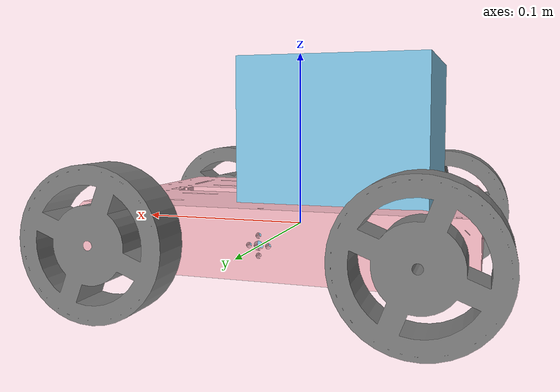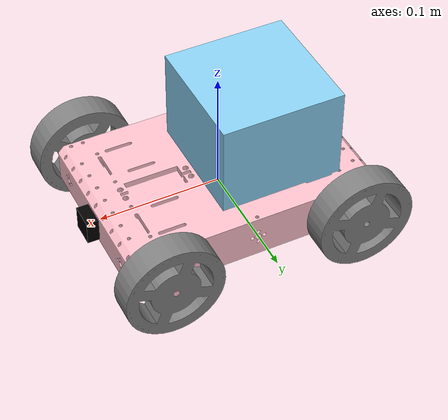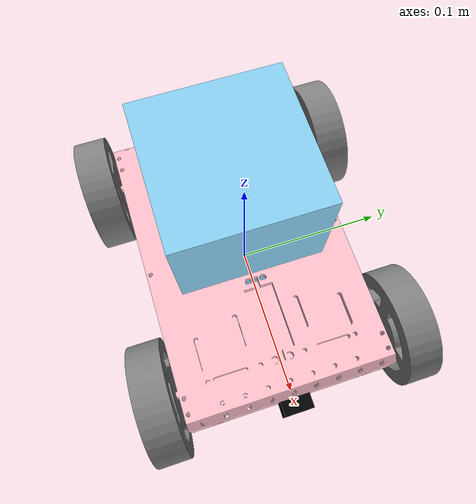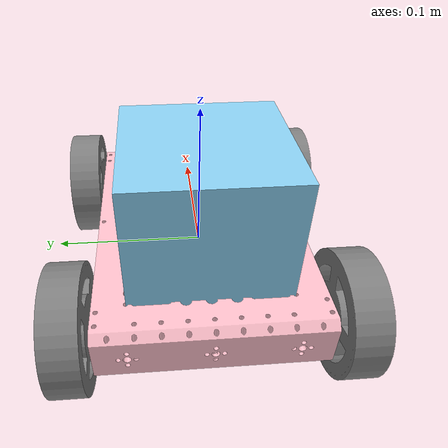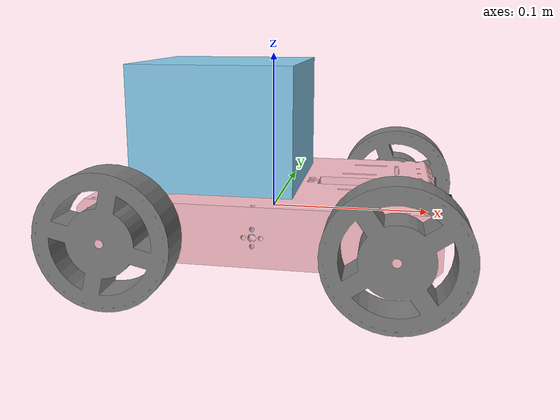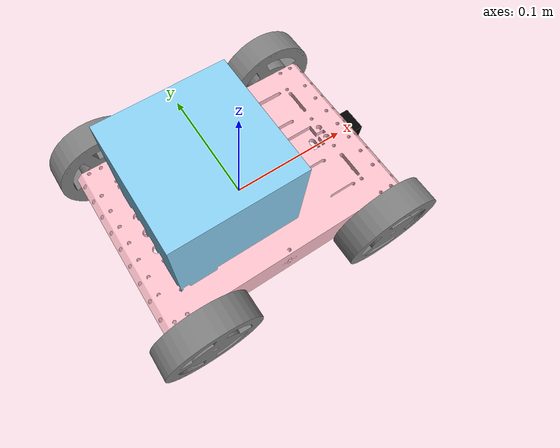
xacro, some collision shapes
<?xml version="1.0" encoding="utf-8"?>

<robot xmlns:xacro="http://www.ros.org/wiki/xacro" name="my_robot_descirption_6">

  <xacro:include filename="$(find my_robot_descirption_6)/urdf/my_robot.gazebo"/>
  <xacro:include filename="$(find my_robot_navigation)/urdf/my_camera.xacro"/>

  <!--dummy robot base-->
  <link name="robot_footprint">
  </link>

  <joint name="robot_footprint_joint" type="fixed">
    <parent link="robot_footprint"/>
    <child link="base_link"/>
    <origin xyz="0.0 0.0 0.0" rpy="0.0 0.0 0.0"/>
  </joint>

  <link
    name="base_link">
    <inertial>
      <origin
        xyz="0.000252209867107389 -0.00038555488684432 -0.000299158651990671"
        rpy="0 0 0" />
      <mass
        value="0.957708699167893" />
      <inertia
        ixx="0.00141349612035954"
        ixy="3.8205623738715E-14"
        ixz="9.82017698792152E-12"
        iyy="0.00215520955933847"
        iyz="1.33153730568242E-14"
        izz="0.00349743945422456" />
    </inertial>
    <visual>
      <origin
        xyz="0 0 0"
        rpy="0 0 0" />
      <geometry>
        <mesh
          filename="package://my_robot_descirption_6/meshes/base_link.STL" />
      </geometry>
      <material
        name="">
        <color
          rgba="1.0 0.753 0.796 1" />
      </material>
    </visual>
    <collision>
      <origin
        xyz="0 0 0"
        rpy="0 0 0" />
      <geometry>
        <mesh
          filename="package://my_robot_descirption_6/meshes/base_link.STL" />
      </geometry>
    </collision>
  </link>
  <link
    name="right_front_wheel_link">
    <inertial>
      <origin
        xyz="1.69194095939185E-06 0.011 -2.39602456181612E-06"
        rpy="0 0 0" />
      <mass
        value="0.205279642528535" />
      <inertia
        ixx="8.76570959286214E-05"
        ixy="-2.20206728368428E-21"
        ixz="7.9106463718466E-08"
        iyy="0.000159146108361823"
        iyz="1.5770111496766E-20"
        izz="8.80482369305033E-05" />
    </inertial>
    <visual>
      <origin
        xyz="0 0 0"
        rpy="0 0 0" />
      <geometry>
        <mesh
          filename="package://my_robot_descirption_6/meshes/right_front_wheel_link.STL" />
      </geometry>
      <material
        name="">
        <color
          rgba="0.5 0.5 0.5 1" />
      </material>
    </visual>
    <collision>
      <origin
        xyz="0 0 0"
        rpy="0 0 0" />
      <geometry>
        <mesh
          filename="package://my_robot_descirption_6/meshes/right_front_wheel_link.STL" />
      </geometry>
    </collision>
  </link>
  <joint
    name="right_front_wheel_joint"
    type="continuous">
    <origin
      xyz="0.080119 -0.095001 0.00037775"
      rpy="0 0 0" />
    <parent
      link="base_link" />
    <child
      link="right_front_wheel_link" />
    <axis
      xyz="0 1 0" />
  </joint>
  <link
    name="left_front_wheel_link">
    <inertial>
      <origin
        xyz="-2.73293422589638E-06 -0.011 -1.06520816169076E-06"
        rpy="0 0 0" />
      <mass
        value="0.205279642528536" />
      <inertia
        ixx="8.77033194033012E-05"
        ixy="-3.08687580188302E-21"
        ixz="1.4900039995678E-07"
        iyy="0.000159146108361823"
        iyz="2.63664442466982E-20"
        izz="8.80020134558235E-05" />
    </inertial>
    <visual>
      <origin
        xyz="0 0 0"
        rpy="0 0 0" />
      <geometry>
        <mesh
          filename="package://my_robot_descirption_6/meshes/left_front_wheel_link.STL" />
      </geometry>
      <material
        name="">
        <color
          rgba="0.5 0.5 0.5 1" />
      </material>
    </visual>
    <collision>
      <origin
        xyz="0 0 0"
        rpy="0 0 0" />
      <geometry>
        <mesh
          filename="package://my_robot_descirption_6/meshes/left_front_wheel_link.STL" />
      </geometry>
    </collision>
  </link>
  <joint
    name="left_front_wheel_joint"
    type="continuous">
    <origin
      xyz="0.080187 0.094999 0.00035735"
      rpy="0 0 0" />
    <parent
      link="base_link" />
    <child
      link="left_front_wheel_link" />
    <axis
      xyz="0 1 0" />
  </joint>
  <link
    name="right_back_wheel_link">
    <inertial>
      <origin
        xyz="6.61278274194377E-07 0.011 2.85767544605867E-06"
        rpy="0 0 0" />
      <mass
        value="0.205279642528535" />
      <inertia
        ixx="8.79534475613262E-05"
        ixy="9.74180014547912E-20"
        ixz="1.8533433821266E-07"
        iyy="0.000159146108361823"
        iyz="-3.65660736267734E-20"
        izz="8.77518852977985E-05" />
    </inertial>
    <visual>
      <origin
        xyz="0 0 0"
        rpy="0 0 0" />
      <geometry>
        <mesh
          filename="package://my_robot_descirption_6/meshes/right_back_wheel_link.STL" />
      </geometry>
      <material
        name="">
        <color
          rgba="0.5 0.5 0.5 1" />
      </material>
    </visual>
    <collision>
      <origin
        xyz="0 0 0"
        rpy="0 0 0" />
      <geometry>
        <mesh
          filename="package://my_robot_descirption_6/meshes/right_back_wheel_link.STL" />
      </geometry>
    </collision>
  </link>
  <joint
    name="right_back_wheel_joint"
    type="continuous">
    <origin
      xyz="-0.079865 -0.095001 0.00029721"
      rpy="0 0 0" />
    <parent
      link="base_link" />
    <child
      link="right_back_wheel_link" />
    <axis
      xyz="0 1 0" />
  </joint>
  <link
    name="leftt_back_wheel_link">
    <inertial>
      <origin
        xyz="-2.73293422597964E-06 -0.011 -1.06520816169423E-06"
        rpy="0 0 0" />
      <mass
        value="0.205279642528536" />
      <inertia
        ixx="8.77033194033012E-05"
        ixy="-1.32673107163055E-21"
        ixz="1.49000399956759E-07"
        iyy="0.000159146108361823"
        iyz="2.27134867156513E-20"
        izz="8.80020134558235E-05" />
    </inertial>
    <visual>
      <origin
        xyz="0 0 0"
        rpy="0 0 0" />
      <geometry>
        <mesh
          filename="package://my_robot_descirption_6/meshes/leftt_back_wheel_link.STL" />
      </geometry>
      <material
        name="">
        <color
          rgba="0.5 0.5 0.5 1" />
      </material>
    </visual>
    <collision>
      <origin
        xyz="0 0 0"
        rpy="0 0 0" />
      <geometry>
        <mesh
          filename="package://my_robot_descirption_6/meshes/leftt_back_wheel_link.STL" />
      </geometry>
    </collision>
  </link>
  <joint
    name="leftt_back_wheel_joint"
    type="continuous">
    <origin
      xyz="-0.079813 0.094999 0.00035735"
      rpy="0 0 0" />
    <parent
      link="base_link" />
    <child
      link="leftt_back_wheel_link" />
    <axis
      xyz="0 1 0" />
  </joint>

    <link name="lidar_link">
        <inertial>
            <origin xyz="0.0 0.0 0.0" rpy="0.0 0.0 0.0"/>
            <mass value="0.1"/>
            <inertia ixx="0.0" ixy="0.0" ixz="0.0" iyy="0.0" iyz="0.0" izz="0.0"/>
        </inertial>
        <visual name="lidar_link_visual">
            <origin xyz="0.0 0.0 0.0" rpy="0.0 0.0 0.0"/>
            <geometry>
                <mesh filename="package://my_robot_descirption_6/meshes/lidar_link.STL"/>
            </geometry>
            <material name="">
                <color rgba="0.5373 0.8118 0.9412 1.0"/>
                <texture filename=""/>
            </material>
        </visual>
        <collision>
            <origin xyz="0.0 0.0 0.0" rpy="0.0 0.0 0.0"/>
            <geometry>
                <box size="0.1 0.1 0.1"/>
            </geometry>
        </collision>
    </link>

    <joint name="lidar_joint" type="fixed">
        <origin xyz="-0.03 0.0 0.045" rpy="1.5708 0.0 0.0"/>
        <parent link="base_link"/>
        <child link="lidar_link"/>
    </joint>

    <link name="laser_data_link">

    </link>

    <joint name="laser_data_joint" type="fixed">
        <origin xyz="0.0 0.0 0.0" rpy="0.0 -1.5708 -1.5708"/>
        <parent link="lidar_link"/>
        <child link="laser_data_link"/>
    </joint>

</robot>

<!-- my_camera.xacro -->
<launch>

    <link name="camera_link">
        <inertial>
            <origin xyz="0.0 0.0 0.0" rpy="0.0 0.0 0.0"/>
            <mass value="0.003"/>
            <inertia ixx="0.0" ixy="0.0" ixz="0.0" iyy="0.0" iyz="0.0" izz="0.0"/>
        </inertial>
        <visual name="camera_link_visual">
            <origin xyz="0.0 0.0 0.0" rpy="0.0 0.0 0.0"/>
            <geometry>
                <box size="0.01 0.02 0.02"/>
            </geometry>
            <material name="">
                <color rgba="0.0 0.0 0.0 1.0"/>
                <texture filename=""/>
            </material>
        </visual>
        <collision>
            <origin xyz="0.0 0.0 0.0" rpy="0.0 0.0 0.0"/>
            <geometry>
                <box size="0.01 0.02 0.02"/>
            </geometry>
        </collision>
    </link>

    <joint name="camera_joint" type="fixed">
        <origin xyz="0.11 0.0 0.0" rpy="0.0 0.0 0.0"/>
        <parent link="base_link"/>
        <child link="camera_link"/>
    </joint>

    <link name="camera_optical_link"> </link>

    <joint name="camera_optical_joint" type="fixed">
        <origin xyz="0.0 0.0 0.0" rpy="${-pi/2} 0 ${-pi/2}"/>
        <parent link="camera_link"/>
        <child link="camera_optical_link"/>
    </joint>

    <gazebo reference="camera_link">
        <material>Gazebo/Red</material>
        <sensor type="camera" name="camera">
            <pose>0 0 0 0 0 0</pose>
            <visualize>true</visualize>
            <update_rate>10</update_rate>
            <camera>
                <horizontal_fov>0.0174532925</horizontal_fov>
                <image>
                    <width>640</width>
                    <height>480</height>
                    <format>R8G8B8</format>
                </image>
                <clip>
                    <near>0.05</near>
                    <far>8.0</far>
                </clip>
            </camera>
            <plugin name="camera_controller" filename="libgazebo_ros_camera.so">
                <frameName>camera_optical_link</frameName>
            </plugin>
        </sensor>
    </gazebo>

</launch>
